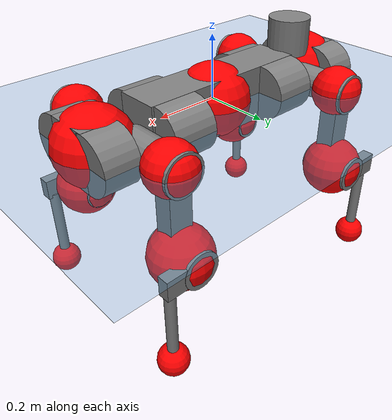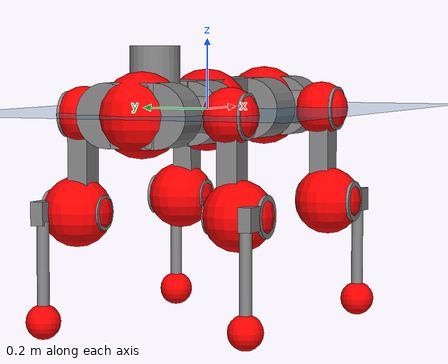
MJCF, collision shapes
<mujoco model="anymal_c">
  <compiler angle="radian" assetdir="assets" balanceinertia="true" inertiafromgeom="false"/>

  <option timestep="0.005" density="1.2" viscosity="2e-05"/>

  <size nkey="1"/>

  <visual>
    <quality shadowsize="8192"/>
    <map shadowclip="0.5"/>
  </visual>

  <default>
    <default class="/">
      <material specular="0" shininess="0.25"/>
      <geom contype="0" conaffinity="0" group="1" solref="-1000 -80"/>
      <site size="0.01 0.005 0.005" group="5"/>
      <general forcelimited="true" forcerange="-80 80" biastype="affine" gainprm="80" biasprm="0 -80 -2"/>
      <default class="anymal_c">
        <joint armature="0.01" damping="0.01" frictionloss="0.1"/>
        <default class="visual">
          <geom type="mesh" group="2"/>
          <default class="visual_zflip"/>
        </default>
        <default class="collision">
          <geom type="cylinder" group="3"/>
          <default class="foot">
            <geom size="0.03 0 0" type="sphere" condim="6" priority="1" friction="0.8 0.02 0.01" solimp="0.015 1 0.03"/>
          </default>
        </default>
      </default>
      <default class="reward_collision_sphere">
        <geom group="5" rgba="1 0 0 1"/>
      </default>
    </default>
  </default>

  <asset>
    <texture type="skybox" colorspace="auto" name="//unnamed_texture_0" builtin="gradient" rgb1="0.95 0.95 0.95" rgb2="0.95 0.95 0.95" width="100" height="600"/>
    <texture type="2d" colorspace="auto" name="texplane" builtin="checker" rgb1="0.345 0.575 0.748" rgb2="0.345 0.575 0.748" markrgb="1 1 1" width="512" height="512"/>
    <texture type="2d" colorspace="linear" name="base" file="base.png"/>
    <texture type="2d" colorspace="linear" name="top_shell" file="top_shell.png"/>
    <texture type="2d" colorspace="linear" name="bottom_shell" file="bottom_shell.png"/>
    <texture type="2d" colorspace="linear" name="remote" file="remote.png"/>
    <texture type="2d" colorspace="linear" name="hatch" file="hatch.png"/>
    <texture type="2d" colorspace="linear" name="handle" file="handle.png"/>
    <texture type="2d" colorspace="linear" name="face" file="face.png"/>
    <texture type="2d" colorspace="linear" name="battery" file="battery.png"/>
    <texture type="2d" colorspace="linear" name="lidar_cage" file="lidar_cage.png"/>
    <texture type="2d" colorspace="linear" name="depth_camera" file="depth_camera.png"/>
    <texture type="2d" colorspace="linear" name="wide_angle_camera" file="wide_angle_camera.png"/>
    <texture type="2d" colorspace="linear" name="lidar" file="lidar.png"/>
    <texture type="2d" colorspace="linear" name="drive" file="drive.png"/>
    <texture type="2d" colorspace="linear" name="hip_l" file="hip_l.png"/>
    <texture type="2d" colorspace="linear" name="shank_l" file="shank_l.png"/>
    <texture type="2d" colorspace="linear" name="foot" file="foot.png"/>
    <texture type="2d" colorspace="linear" name="thigh" file="thigh.png"/>
    <texture type="2d" colorspace="linear" name="shank_r" file="shank_r.png"/>
    <texture type="2d" colorspace="linear" name="hip_r" file="hip_r.png"/>
    <material name="MatPlane" class="/" texture="texplane" texuniform="true" texrepeat="2 2" specular="0.9" shininess="0.5"/>
    <material name="black_plastic" class="/" rgba="0.007 0.007 0.007 1"/>
    <material name="green" class="/" rgba="0.052 0.178 0.033 1"/>
    <material name="red" class="/" rgba="0.178 0.006 0.005 1"/>
    <material name="yellow" class="/" rgba="0.178 0.119 0.006 1"/>
    <material name="lwl" class="/" rgba="0.8 0.8 0.8 1"/>
    <material name="base" class="/" texture="base"/>
    <material name="top_shell" class="/" texture="top_shell"/>
    <material name="bottom_shell" class="/" texture="bottom_shell"/>
    <material name="hip_l" class="/" texture="hip_l"/>
    <material name="thigh" class="/" texture="thigh"/>
    <material name="shank_l" class="/" texture="shank_l"/>
    <material name="foot" class="/" texture="foot"/>
    <material name="hip_r" class="/" texture="hip_r"/>
    <material name="shank" class="/" texture="shank_r"/>
    <material name="hatch" class="/" texture="hatch"/>
    <material name="remote" class="/" texture="remote"/>
    <material name="handle" class="/" texture="handle"/>
    <material name="face" class="/" texture="face"/>
    <material name="depth_camera" class="/" texture="depth_camera"/>
    <material name="wide_angle_camera" class="/" texture="wide_angle_camera"/>
    <material name="battery" class="/" texture="battery"/>
    <material name="lidar_cage" class="/" texture="lidar_cage"/>
    <material name="lidar" class="/" texture="lidar"/>
    <material name="drive" class="/" texture="drive"/>
    <mesh name="base_0" class="/" file="base_0.obj"/>
    <mesh name="base_1" class="/" file="base_1.obj"/>
    <mesh name="base_2" class="/" file="base_2.obj"/>
    <mesh name="base_3" class="/" file="base_3.obj"/>
    <mesh name="base_4" class="/" file="base_4.obj"/>
    <mesh name="base_5" class="/" file="base_5.obj"/>
    <mesh name="top_shell" class="/" file="top_shell.obj"/>
    <mesh name="bottom_shell" class="/" file="bottom_shell.obj"/>
    <mesh name="remote" class="/" file="remote.obj"/>
    <mesh name="handle" class="/" file="handle.obj"/>
    <mesh name="face" class="/" file="face.obj"/>
    <mesh name="wide_angle_camera" class="/" file="wide_angle_camera.obj"/>
    <mesh name="depth_camera" class="/" file="depth_camera.obj"/>
    <mesh name="battery" class="/" file="battery.obj"/>
    <mesh name="lidar_cage" class="/" file="lidar_cage.obj"/>
    <mesh name="lidar" class="/" file="lidar.obj"/>
    <mesh name="drive" class="/" file="drive.obj"/>
    <mesh name="hip_l" class="/" file="hip_l.obj"/>
    <mesh name="thigh" class="/" file="thigh.obj"/>
    <mesh name="shank_l" class="/" file="shank_l.obj"/>
    <mesh name="foot" class="/" file="foot.obj"/>
    <mesh name="hip_r" class="/" file="hip_r.obj"/>
    <mesh name="hatch" class="/" file="hatch.obj"/>
    <mesh name="shank_r" class="/" file="shank_r.obj"/>
  </asset>

  <worldbody>
    <geom name="floor" class="/" size="100 100 0.125" type="plane" group="0" material="MatPlane"/>
    <light name="toplight_shadow" class="/" pos="0 0 5" dir="0.0990148 0.0990148 -0.990148" type="directional" ambient="0.04 0.04 0.04" diffuse="0.55 0.55 0.55" specular="0.12 0.12 0.12"/>
    <light name="toplight_fill" class="/" pos="0 0 5" dir="0.0990148 0.0990148 -0.990148" type="directional" castshadow="false" ambient="0.04 0.04 0.04" diffuse="0.3 0.3 0.3" specular="0.08 0.08 0.08"/>
    <body name="trunk" childclass="anymal_c" pos="-0.00176257 0.000425982 -0.00267797" quat="1 -0.000289746 0.000124413 9.31074e-06">
      <inertial pos="0.00348931 0.00236846 0.043702" quat="0.499974 0.493991 0.501679 0.504298" mass="18.6114" diaginertia="0.481445 0.766574 0.171337"/>
      <joint name="//unnamed_joint_0" type="free" armature="0" damping="0" frictionloss="0"/>
      <geom name="//unnamed_geom_1" class="visual" material="green" mesh="base_0"/>
      <geom name="//unnamed_geom_2" class="visual" material="yellow" mesh="base_1"/>
      <geom name="//unnamed_geom_3" class="visual" material="red" mesh="base_2"/>
      <geom name="//unnamed_geom_4" class="visual" material="black_plastic" mesh="base_3"/>
      <geom name="//unnamed_geom_5" class="visual" material="lwl" mesh="base_4"/>
      <geom name="//unnamed_geom_6" class="visual" material="base" mesh="base_5"/>
      <geom name="trunk_1" class="collision" size="0.282477 0.0681842 0.0876654" type="box"/>
      <geom name="trunk_2" class="collision" size="0.0876654 0.0706194" pos="0.204718 0.0726365 0" quat="0.707107 0 0.707107 0"/>
      <geom name="trunk_3" class="collision" size="0.0876654 0.0706194" pos="-0.204718 0.0726365 0" quat="0.707107 0 0.707107 0"/>
      <geom name="trunk_4" class="collision" size="0.0876654 0.0706194" pos="0.204718 -0.0726365 0" quat="0.707107 0 0.707107 0"/>
      <geom name="trunk_5" class="collision" size="0.0876654 0.0706194" pos="-0.204718 -0.0726365 0" quat="0.707107 0 0.707107 0"/>
      <geom name="//unnamed_geom_12" class="visual" material="top_shell" mesh="top_shell"/>
      <geom name="//unnamed_geom_13" class="visual" material="bottom_shell" mesh="bottom_shell"/>
      <geom name="//unnamed_geom_14" class="visual" material="remote" mesh="remote"/>
      <geom name="//unnamed_geom_15" class="visual" material="handle" mesh="handle"/>
      <geom name="//unnamed_geom_16" class="visual" pos="0.39014 0 0" quat="1 0 0 0" material="face" mesh="face"/>
      <geom name="trunk_6" class="collision" size="0.0535733 0.0681842 0.0876654" pos="0.441908 0 0" type="box"/>
      <geom name="//unnamed_geom_18" class="collision" size="0.0876654 0.0535733" pos="0.441908 0.0726365 0" quat="0.707107 0 0.707107 0"/>
      <geom name="//unnamed_geom_19" class="collision" size="0.0876654 0.0535733" pos="0.441908 -0.0726365 0" quat="0.707107 0 0.707107 0"/>
      <geom name="//unnamed_geom_20" class="visual" pos="0.434519 0 -0.0275596" quat="0.965926 0 0.258819 0" material="depth_camera" mesh="depth_camera"/>
      <geom name="//unnamed_geom_21" class="visual" pos="0.482851 0 0.014121" material="wide_angle_camera" mesh="wide_angle_camera"/>
      <geom name="//unnamed_geom_22" class="visual_zflip" pos="-0.39014 0 0" quat="0 0 0 1" material="face" mesh="face"/>
      <geom name="trunk_7" class="collision" size="0.0535733 0.0681842 0.0876654" pos="-0.441908 0 0" quat="0 0 0 1" type="box"/>
      <geom name="//unnamed_geom_24" class="collision" size="0.0876654 0.0535733" pos="-0.441908 -0.0726365 0" quat="0 -0.707107 0 0.707107"/>
      <geom name="//unnamed_geom_25" class="collision" size="0.0876654 0.0535733" pos="-0.441908 0.0726365 0" quat="0 -0.707107 0 0.707107"/>
      <geom name="//unnamed_geom_26" class="visual" pos="-0.434519 0 -0.0275596" quat="0 -0.258819 0 0.965926" material="depth_camera" mesh="depth_camera"/>
      <geom name="//unnamed_geom_27" class="visual_zflip" pos="-0.482851 0 0.014121" quat="0 0 0 1" material="wide_angle_camera" mesh="wide_angle_camera"/>
      <geom name="//unnamed_geom_28" class="visual" material="battery" mesh="battery"/>
      <geom name="//unnamed_geom_29" class="visual" pos="0 0.0806053 0.0273868" quat="0.683013 -0.183013 0.183013 0.683013" material="depth_camera" mesh="depth_camera"/>
      <geom name="//unnamed_geom_30" class="visual" pos="0 -0.0806053 0.0273868" quat="0.683013 0.183013 0.183013 -0.683013" material="depth_camera" mesh="depth_camera"/>
      <geom name="//unnamed_geom_31" class="visual" pos="-0.342608 0 0.0693315" quat="1 0 0 0" material="lidar_cage" mesh="lidar_cage"/>
      <geom name="trunk_8" class="collision" size="0.0681842 0.0584436" pos="-0.342608 0 0.125929"/>
      <geom name="//unnamed_geom_33" class="visual" pos="-0.342608 3.78862e-05 0.134135" quat="0.707107 0 0 -0.707107" material="lidar" mesh="lidar"/>
      <geom name="//unnamed_geom_34" class="visual" pos="0.282275 0.107884 1.62804e-09" quat="0.258819 0.965926 0 0" material="drive" mesh="drive"/>
      <geom name="//unnamed_geom_35" class="visual" pos="0.282275 -0.107884 -1.62804e-09" quat="0.258819 -0.965926 0 0" material="drive" mesh="drive"/>
      <geom name="//unnamed_geom_36" class="visual" pos="-0.282275 0.107884 -1.62804e-09" quat="0 0 0.965926 -0.258819" material="drive" mesh="drive"/>
      <geom name="//unnamed_geom_37" class="visual" pos="-0.282275 -0.107884 1.62804e-09" quat="0 0 -0.965926 -0.258819" material="drive" mesh="drive"/>
      <geom name="//unnamed_geom_38" class="visual" pos="0.109183 0 0.0688599" quat="1 0 0 0" material="hatch" mesh="hatch"/>
      <geom name="//unnamed_geom_39" class="reward_collision_sphere" size="0.116887"/>
      <geom name="//unnamed_geom_40" class="reward_collision_sphere" size="0.116887" pos="0.423554 0 0"/>
      <geom name="//unnamed_geom_41" class="reward_collision_sphere" size="0.116887" pos="-0.423554 0 0"/>
      <site name="imu" pos="0.235189 0.0208906 0.042152" size="0.0097406"/>
      <camera name="track" pos="0 -2.07533 0" quat="0.707107 0.707107 0 0" mode="trackcom"/>
      <camera name="ego_camera" pos="0.423554 0 -0.0377314" quat="-0.5 -0.5 0.5 0.5"/>
      <body name="LF_HIP" pos="0.282479 0.106105 0.00184632" quat="0.259946 0.965623 0.000265494 -0.000755215">
        <inertial pos="0.0555529 -0.0170554 -0.00847223" quat="-0.127881 0.709349 -0.135306 0.679826" mass="2.54314" diaginertia="0.00432825 0.00625158 0.00246195"/>
        <joint name="LF_HAA" pos="0 0 0" axis="0.999974 0.00252727 0.00670043" range="-0.746793 0.476755" armature="0.00978699" damping="0.0237268" frictionloss="0.0994397"/>
        <geom name="//unnamed_geom_42" class="visual" pos="0 9.57702e-05 -1.57302e-05" quat="0.258819 -0.965926 0 0" material="hip_l" mesh="hip_l"/>
        <geom name="//unnamed_geom_43" class="visual" pos="0.0563797 -0.0695522 -0.0394579" quat="0.183013 -0.683013 0.683013 0.183013" material="drive" mesh="drive"/>
        <geom name="//unnamed_geom_44" class="collision" size="0.048703 0.0681842" pos="0.0563797 -0.0124103 -0.00651339" quat="-0.353553 -0.612372 0.612372 -0.353553"/>
        <body name="LF_THIGH" pos="0.0593293 -0.0765547 -0.0366781" quat="0.183187 -0.682908 0.683085 0.182961">
          <inertial pos="0.0306449 -0.00191231 -0.231283" quat="0.993219 -0.00502925 -0.0804949 0.083739" mass="2.80776" diaginertia="0.022675 0.0351712 0.00298963"/>
          <joint name="LF_HFE" pos="0 0 0" axis="0.999948 0.00631652 -0.00805864" stiffness="0.0102722" range="-3.09327 3.12858" armature="0.00844262" damping="0.00414381" frictionloss="0.0842899"/>
          <geom name="//unnamed_geom_45" class="visual" pos="-0.00191865 -3.02335e-06 0" quat="0.707107 0 0 -0.707107" material="thigh" mesh="thigh"/>
          <geom name="//unnamed_geom_46" class="collision" size="0.0633139 0.0389624" pos="0.0376492 0 0" quat="0.5 0.5 -0.5 -0.5"/>
          <geom name="//unnamed_geom_47" class="collision" size="0.0365273 0.0292218 0.137648" pos="0.0282369 0 -0.133299" quat="0.707107 0 0 -0.707107" type="box"/>
          <geom name="//unnamed_geom_48" class="visual" pos="0.0944054 0 -0.268836" quat="1 0 0 0" material="drive" mesh="drive"/>
          <geom name="//unnamed_geom_49" class="collision" size="0.048703 0.0681842" pos="0.0285193 0 -0.268836" quat="0.707107 0 0.707107 0"/>
          <geom name="//unnamed_geom_50" class="reward_collision_sphere" size="0.0779248" pos="0.0235308 0 0"/>
          <body name="LF_SHANK" pos="0.0953833 0.000353837 -0.268854" quat="0.999999 0.000757168 -0.000263957 -0.000725776">
            <inertial pos="0.00449179 -0.0632209 -0.0743009" quat="0.991958 -0.124677 -0.00985408 -0.0194457" mass="0.542199" diaginertia="0.00710995 0.0110966 0.000840351"/>
            <joint name="LF_KFE" pos="0 0 0" axis="0.999911 0.00859231 -0.0101928" stiffness="0.00763283" range="-3.13011 3.12606" armature="0.010885" damping="0.00371263" frictionloss="0.109681"/>
            <geom name="//unnamed_geom_51" class="visual" pos="-0.00062563 -0.00333589 0" quat="0.707107 0 0 -0.707107" material="shank_l" mesh="shank_l"/>
            <geom name="LF_kfe_act" class="collision" size="0.0584436 0.0194812" pos="0.0188246 0 0" quat="0.5 0.5 -0.5 -0.5"/>
            <geom name="//unnamed_geom_53" class="collision" size="0.0560075 0.0328745 0.0185071" pos="0.0188246 -0.0596647 0" quat="0.5 0.5 -0.5 -0.5" type="box"/>
            <geom name="//unnamed_geom_54" class="visual" pos="0.0122832 -0.0923376 -0.318802" quat="0.382683 0 0 -0.92388" material="foot" mesh="foot"/>
            <geom name="LF_calf" class="collision" size="0.0170461 0.137588" pos="0.0122831 -0.0912626 -0.159401" quat="0.707107 0 0 -0.707107"/>
            <geom name="LF_foot" class="foot" size="0.024014" pos="0.0122831 -0.0912626 -0.297578" quat="0.707107 0 0 -0.707107"/>
            <geom name="//unnamed_geom_57" class="reward_collision_sphere" size="0.097406" pos="-0.0470615 0 0"/>
            <geom name="//unnamed_geom_58" class="reward_collision_sphere" size="0.048703" pos="0.0122831 -0.0912626 -0.297578"/>
            <site name="LF_foot" class="foot" pos="0.0122831 -0.0912626 -0.297578" quat="0.707107 0 0 -0.707107" size="0.0097406"/>
          </body>
        </body>
      </body>
      <body name="RF_HIP" pos="0.284055 -0.107104 0.00074238" quat="0.258833 -0.965922 -0.000427168 0.000379577">
        <inertial pos="0.056024 0.0160697 -0.00818049" quat="0.134333 0.677991 0.126451 0.711542" mass="2.57823" diaginertia="0.00413429 0.00574173 0.00232619"/>
        <joint name="RF_HAA" pos="0 0 0" axis="0.999938 -0.0111208 -0.00088036" range="-0.440569 0.726376" armature="0.0108691" damping="0.00898249" frictionloss="0.0955995"/>
        <geom name="//unnamed_geom_59" class="visual" pos="0 -9.57694e-05 -1.57301e-05" quat="0.258819 0.965926 0 0" material="hip_r" mesh="hip_r"/>
        <geom name="//unnamed_geom_60" class="visual" pos="0.0563797 0.0695522 -0.0394579" quat="0.183013 0.683013 0.683013 -0.183013" material="drive" mesh="drive"/>
        <geom name="//unnamed_geom_61" class="collision" size="0.048703 0.0681842" pos="0.0563797 0.0124103 -0.00651339" quat="-0.353553 0.612372 0.612372 0.353553"/>
        <body name="RF_THIGH" pos="0.0567097 0.0769906 -0.0398422" quat="0.183054 0.683362 0.682791 -0.182497">
          <inertial pos="0.0315075 -0.001149 -0.231449" quat="0.992667 -0.000348538 -0.0872599 0.0836535" mass="2.8157" diaginertia="0.0216204 0.0336213 0.00304159"/>
          <joint name="RF_HFE" pos="0 0 0" axis="0.999943 -0.0106573 0.000925583" range="-3.16015 3.15557" armature="0.00972224" damping="0.0035139" frictionloss="0.110738"/>
          <geom name="//unnamed_geom_62" class="visual" pos="-0.00191865 -3.02335e-06 0" quat="0.707107 0 0 -0.707107" material="thigh" mesh="thigh"/>
          <geom name="//unnamed_geom_63" class="collision" size="0.0633139 0.0389624" pos="0.0376492 0 0" quat="0.5 0.5 0.5 0.5"/>
          <geom name="//unnamed_geom_64" class="collision" size="0.0365273 0.0292218 0.137648" pos="0.0282369 0 -0.133299" quat="0.707107 0 0 0.707107" type="box"/>
          <geom name="//unnamed_geom_65" class="visual" pos="0.0944054 0 -0.268836" quat="1 0 0 0" material="drive" mesh="drive"/>
          <geom name="//unnamed_geom_66" class="collision" size="0.048703 0.0681842" pos="0.0285193 0 -0.268836" quat="0.707107 0 0.707107 0"/>
          <geom name="//unnamed_geom_67" class="reward_collision_sphere" size="0.0779248" pos="0.0235308 0 0"/>
          <body name="RF_SHANK" pos="0.0924151 -0.000734009 -0.271773" quat="1 8.13019e-05 3.88861e-05 -1.29893e-06">
            <inertial pos="0.00552624 0.0630035 -0.0766848" quat="0.992972 0.115546 -0.000337602 0.0256006" mass="0.548572" diaginertia="0.00746372 0.0110854 0.000819393"/>
            <joint name="RF_KFE" pos="0 0 0" axis="0.999981 -0.00599061 -0.00167967" range="-3.13275 3.16992" armature="0.00844705" damping="0.0137043" frictionloss="0.0839272"/>
            <geom name="//unnamed_geom_68" class="visual" pos="-0.000625627 0.00333589 0" quat="0.707107 0 0 0.707107" material="shank" mesh="shank_r"/>
            <geom name="RF_kfe_act" class="collision" size="0.0584436 0.0194812" pos="0.0188246 0 0" quat="0.5 0.5 0.5 0.5"/>
            <geom name="//unnamed_geom_70" class="collision" size="0.0560075 0.0328745 0.0185071" pos="0.0188246 0.0596647 0" quat="0.5 0.5 0.5 0.5" type="box"/>
            <geom name="//unnamed_geom_71" class="visual" pos="0.0122829 0.0923376 -0.318802" quat="0.382683 0 0 0.92388" material="foot" mesh="foot"/>
            <geom name="RF_calf" class="collision" size="0.0170461 0.137588" pos="0.0122831 0.0912626 -0.159401" quat="0.707107 0 0 0.707107"/>
            <geom name="RF_foot" class="foot" size="0.0243313" pos="0.0122831 0.0912626 -0.297578" quat="0.707107 0 0 0.707107"/>
            <geom name="//unnamed_geom_74" class="reward_collision_sphere" size="0.097406" pos="-0.0470615 0 0"/>
            <geom name="//unnamed_geom_75" class="reward_collision_sphere" size="0.048703" pos="0.0122831 0.0912626 -0.297578"/>
            <site name="RF_foot" class="foot" pos="0.0122831 0.0912626 -0.297578" quat="0.707107 0 0 0.707107" size="0.0097406"/>
          </body>
        </body>
      </body>
      <body name="LH_HIP" pos="-0.281168 0.108314 -0.000968529" quat="0.00074728 -0.000181894 0.965847 -0.259111">
        <inertial pos="0.0562429 0.0147515 -0.00920394" quat="0.135637 0.681309 0.137199 0.706114" mass="2.60181" diaginertia="0.00442349 0.00612934 0.00250218"/>
        <joint name="LH_HAA" pos="0 0 0" axis="0.999986 0.000148433 0.00531605" stiffness="0.00600212" range="-0.513733 0.678095" armature="0.00944935" damping="0" frictionloss="0.0967733"/>
        <geom name="//unnamed_geom_76" class="visual" pos="0 -9.57694e-05 -1.57301e-05" quat="-0.258819 -0.965926 0 0" material="hip_r" mesh="hip_r"/>
        <geom name="//unnamed_geom_77" class="visual" pos="0.0563797 0.0695522 -0.0394579" quat="0.183013 0.683013 0.683013 -0.183013" material="drive" mesh="drive"/>
        <geom name="//unnamed_geom_78" class="collision" size="0.048703 0.0681842" pos="0.0563797 0.0124103 -0.00651339" quat="-0.353553 0.612372 0.612372 0.353553"/>
        <body name="LH_THIGH" pos="0.0549732 0.0753306 -0.0399402" quat="0.182794 0.682601 0.683334 -0.183566">
          <inertial pos="0.0290774 -0.000586946 -0.23021" quat="0.991402 -0.0111759 -0.0923057 0.0920722" mass="2.88179" diaginertia="0.0227609 0.037612 0.00329324"/>
          <joint name="LH_HFE" pos="0 0 0" axis="0.999961 0.00847541 -0.00234287" stiffness="0.00260375" range="-3.15658 3.13087" armature="0.0102731" damping="0" frictionloss="0.0960136"/>
          <geom name="//unnamed_geom_79" class="visual" pos="-0.00191865 -3.02335e-06 0" quat="0.707107 0 0 -0.707107" material="thigh" mesh="thigh"/>
          <geom name="//unnamed_geom_80" class="collision" size="0.0633139 0.0389624" pos="0.0376492 0 0" quat="0.5 0.5 -0.5 -0.5"/>
          <geom name="//unnamed_geom_81" class="collision" size="0.0365273 0.0292218 0.137648" pos="0.0282369 0 -0.133299" quat="0.707107 0 0 -0.707107" type="box"/>
          <geom name="//unnamed_geom_82" class="visual" pos="0.0944054 0 -0.268836" quat="1 0 0 0" material="drive" mesh="drive"/>
          <geom name="//unnamed_geom_83" class="collision" size="0.048703 0.0681842" pos="0.0285193 0 -0.268836" quat="0.707107 0 0.707107 0"/>
          <geom name="//unnamed_geom_84" class="reward_collision_sphere" size="0.0779248" pos="0.0235308 0 0"/>
          <body name="LH_SHANK" pos="0.0944882 -0.00232928 -0.268196" quat="1 0.000205075 -2.88359e-05 0.000520653">
            <inertial pos="0.00240479 0.0620889 -0.0765519" quat="0.992831 0.11484 0.0098254 0.0316497" mass="0.560634" diaginertia="0.00752141 0.0113898 0.000880374"/>
            <joint name="LH_KFE" pos="0 0 0" axis="0.999994 -0.00228605 -0.00275738" stiffness="0.00713715" range="-3.15381 3.19406" armature="0.0108073" damping="0" frictionloss="0.0916347"/>
            <geom name="//unnamed_geom_85" class="visual" pos="-0.000625627 0.00333589 0" quat="-0.707107 0 0 -0.707107" material="shank" mesh="shank_r"/>
            <geom name="LH_kfe_act" class="collision" size="0.0584436 0.0194812" pos="0.0188246 0 0" quat="0.5 0.5 -0.5 -0.5"/>
            <geom name="//unnamed_geom_87" class="collision" size="0.0560075 0.0328745 0.0185071" pos="0.0188246 0.0596647 0" quat="0.5 0.5 -0.5 -0.5" type="box"/>
            <geom name="//unnamed_geom_88" class="visual" pos="0.0122829 0.0923376 -0.318802" quat="-0.382683 0 0 -0.92388" material="foot" mesh="foot"/>
            <geom name="LH_calf" class="collision" size="0.0170461 0.137588" pos="0.0122831 0.0912626 -0.159401" quat="0.707107 0 0 -0.707107"/>
            <geom name="LH_foot" class="foot" size="0.0288095" pos="0.0122831 0.0912626 -0.297578" quat="0.707107 0 0 -0.707107"/>
            <geom name="//unnamed_geom_91" class="reward_collision_sphere" size="0.097406" pos="-0.0470615 0 0"/>
            <geom name="//unnamed_geom_92" class="reward_collision_sphere" size="0.048703" pos="0.0122831 0.0912626 -0.297578"/>
            <site name="LH_foot" class="foot" pos="0.0122831 0.0912626 -0.297578" quat="0.707107 0 0 -0.707107" size="0.0097406"/>
          </body>
        </body>
      </body>
      <body name="RH_HIP" pos="-0.279673 -0.110035 0.00122223" quat="7.18188e-05 0.000496008 -0.965934 -0.258788">
        <inertial pos="0.0520777 -0.0146168 -0.00674239" quat="-0.127176 0.708941 -0.1433 0.678744" mass="2.57955" diaginertia="0.0043978 0.00601735 0.00247323"/>
        <joint name="RH_HAA" pos="0 0 0" axis="0.999972 -0.0066465 0.00339825" stiffness="0.00530074" range="-0.669832 0.517912" armature="0.00832966" damping="0.00864815" frictionloss="0.104998"/>
        <geom name="//unnamed_geom_93" class="visual" pos="0 9.57702e-05 -1.57302e-05" quat="-0.258819 0.965926 0 0" material="hip_l" mesh="hip_l"/>
        <geom name="//unnamed_geom_94" class="visual" pos="0.0563797 -0.0695522 -0.0394579" quat="-0.183013 0.683013 -0.683013 -0.183013" material="drive" mesh="drive"/>
        <geom name="//unnamed_geom_95" class="collision" size="0.048703 0.0681842" pos="0.0563797 -0.0124103 -0.00651339" quat="0.353553 0.612372 -0.612372 0.353553"/>
        <body name="RH_THIGH" pos="0.0540539 -0.0744051 -0.0384587" quat="-0.183056 0.682929 -0.683113 -0.182908">
          <inertial pos="0.0288815 -0.000140757 -0.2313" quat="0.993352 -0.00343763 -0.0813701 0.0813521" mass="2.82128" diaginertia="0.0219459 0.0367411 0.00312624"/>
          <joint name="RH_HFE" pos="0 0 0" axis="0.999963 0.00425583 -0.00748525" stiffness="0.00971887" range="-3.13534 3.14716" armature="0.00968824" damping="0.00266355" frictionloss="0.105238"/>
          <geom name="//unnamed_geom_96" class="visual" pos="-0.00191865 -3.02335e-06 0" quat="0.707107 0 0 -0.707107" material="thigh" mesh="thigh"/>
          <geom name="//unnamed_geom_97" class="collision" size="0.0633139 0.0389624" pos="0.0376492 0 0" quat="0.5 0.5 0.5 0.5"/>
          <geom name="//unnamed_geom_98" class="collision" size="0.0365273 0.0292218 0.137648" pos="0.0282369 0 -0.133299" quat="0.707107 0 0 0.707107" type="box"/>
          <geom name="//unnamed_geom_99" class="visual" pos="0.0944054 0 -0.268836" quat="1 0 0 0" material="drive" mesh="drive"/>
          <geom name="//unnamed_geom_100" class="collision" size="0.048703 0.0681842" pos="0.0285193 0 -0.268836" quat="0.707107 0 0.707107 0"/>
          <geom name="//unnamed_geom_101" class="reward_collision_sphere" size="0.0779248" pos="0.0235308 0 0"/>
          <body name="RH_SHANK" pos="0.0939028 7.30768e-05 -0.265098" quat="1 -1.78418e-05 -0.000285956 -0.000175072">
            <inertial pos="0.00379373 -0.0625944 -0.0751489" quat="0.993632 -0.107589 -0.00608548 -0.0329166" mass="0.543632" diaginertia="0.0077265 0.0109219 0.000838474"/>
            <joint name="RH_KFE" pos="0 0 0" axis="1 -3.08582e-05 8.36831e-05" stiffness="0.00258968" range="-3.16852 3.14709" armature="0.00853711" damping="0.00881718" frictionloss="0.085877"/>
            <geom name="//unnamed_geom_102" class="visual" pos="-0.00062563 -0.00333589 0" quat="0.707107 0 0 -0.707107" material="shank_l" mesh="shank_l"/>
            <geom name="RH_kfe_act" class="collision" size="0.0584436 0.0194812" pos="0.0188246 0 0" quat="0.5 0.5 0.5 0.5"/>
            <geom name="//unnamed_geom_104" class="collision" size="0.0560075 0.0328745 0.0185071" pos="0.0188246 -0.0596647 0" quat="0.5 0.5 0.5 0.5" type="box"/>
            <geom name="//unnamed_geom_105" class="visual" pos="0.0122832 -0.0923376 -0.318802" quat="0.382683 0 0 -0.92388" material="foot" mesh="foot"/>
            <geom name="RH_calf" class="collision" size="0.0170461 0.137588" pos="0.0122831 -0.0912626 -0.159401" quat="0.707107 0 0 0.707107"/>
            <geom name="RH_foot" class="foot" size="0.0296255" pos="0.0122831 -0.0912626 -0.297578" quat="0.707107 0 0 0.707107"/>
            <geom name="//unnamed_geom_108" class="reward_collision_sphere" size="0.097406" pos="-0.0470615 0 0"/>
            <geom name="//unnamed_geom_109" class="reward_collision_sphere" size="0.048703" pos="0.0122831 -0.0912626 -0.297578"/>
            <site name="RH_foot" class="foot" pos="0.0122831 -0.0912626 -0.297578" quat="0.707107 0 0 0.707107" size="0.0097406"/>
          </body>
        </body>
      </body>
    </body>
  </worldbody>

  <contact>
    <pair class="/" geom1="floor" geom2="LF_foot" name="//unnamed_contact_0"/>
    <pair class="/" geom1="floor" geom2="RF_foot" name="//unnamed_contact_1"/>
    <pair class="/" geom1="floor" geom2="LH_foot" name="//unnamed_contact_2"/>
    <pair class="/" geom1="floor" geom2="RH_foot" name="//unnamed_contact_3"/>
  </contact>

  <actuator>
    <general name="LF_HAA" class="/" joint="LF_HAA" forcerange="-79.8823 79.8823" gainprm="82.9368" biasprm="0 -82.9368 -2.00593"/>
    <general name="LF_HFE" class="/" joint="LF_HFE" forcerange="-70.5448 70.5448" gainprm="82.9368" biasprm="0 -82.9368 -2.00593"/>
    <general name="LF_KFE" class="/" joint="LF_KFE" forcerange="-77.8548 77.8548" gainprm="82.9368" biasprm="0 -82.9368 -2.00593"/>
    <general name="RF_HAA" class="/" joint="RF_HAA" forcerange="-81.1569 81.1569" gainprm="82.9368" biasprm="0 -82.9368 -2.00593"/>
    <general name="RF_HFE" class="/" joint="RF_HFE" forcerange="-86.9558 86.9558" gainprm="82.9368" biasprm="0 -82.9368 -2.00593"/>
    <general name="RF_KFE" class="/" joint="RF_KFE" forcerange="-77.9513 77.9513" gainprm="82.9368" biasprm="0 -82.9368 -2.00593"/>
    <general name="LH_HAA" class="/" joint="LH_HAA" forcerange="-75.1037 75.1037" gainprm="82.9368" biasprm="0 -82.9368 -2.00593"/>
    <general name="LH_HFE" class="/" joint="LH_HFE" forcerange="-70.9682 70.9682" gainprm="82.9368" biasprm="0 -82.9368 -2.00593"/>
    <general name="LH_KFE" class="/" joint="LH_KFE" forcerange="-80.6852 80.6852" gainprm="82.9368" biasprm="0 -82.9368 -2.00593"/>
    <general name="RH_HAA" class="/" joint="RH_HAA" forcerange="-73.0432 73.0432" gainprm="82.9368" biasprm="0 -82.9368 -2.00593"/>
    <general name="RH_HFE" class="/" joint="RH_HFE" forcerange="-76.2045 76.2045" gainprm="82.9368" biasprm="0 -82.9368 -2.00593"/>
    <general name="RH_KFE" class="/" joint="RH_KFE" forcerange="-80.711 80.711" gainprm="82.9368" biasprm="0 -82.9368 -2.00593"/>
  </actuator>

  <sensor>
    <gyro site="imu" name="imu_angular_velocity"/>
    <velocimeter site="imu" name="imu_linear_velocity"/>
    <framelinvel objtype="site" objname="LF_foot" name="LF_foot_global_linear_velocity"/>
    <framelinvel objtype="site" objname="RF_foot" name="RF_foot_global_linear_velocity"/>
    <framelinvel objtype="site" objname="LH_foot" name="LH_foot_global_linear_velocity"/>
    <framelinvel objtype="site" objname="RH_foot" name="RH_foot_global_linear_velocity"/>
  </sensor>

  <keyframe>
    <key name="home" qpos="0 0 0.55 1 0 0 0 0 0.4 -0.8 0 -0.4 0.8 0 -0.4 0.8 0 0.4 -0.8"/>
  </keyframe>
</mujoco>
